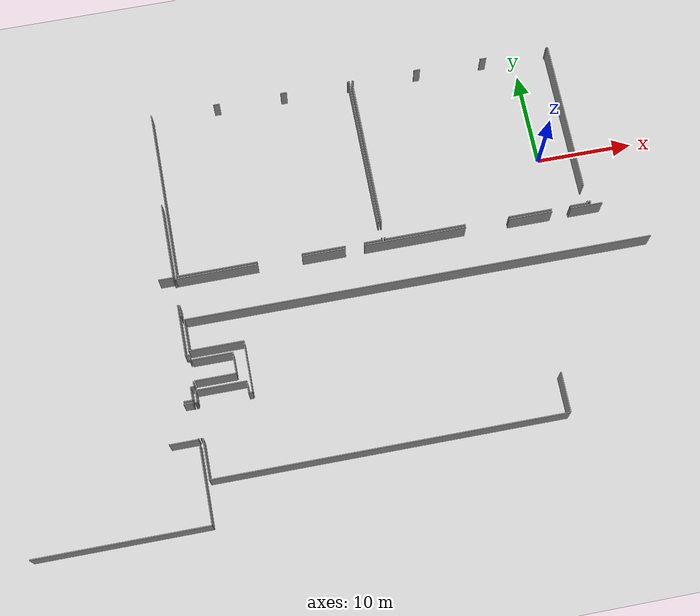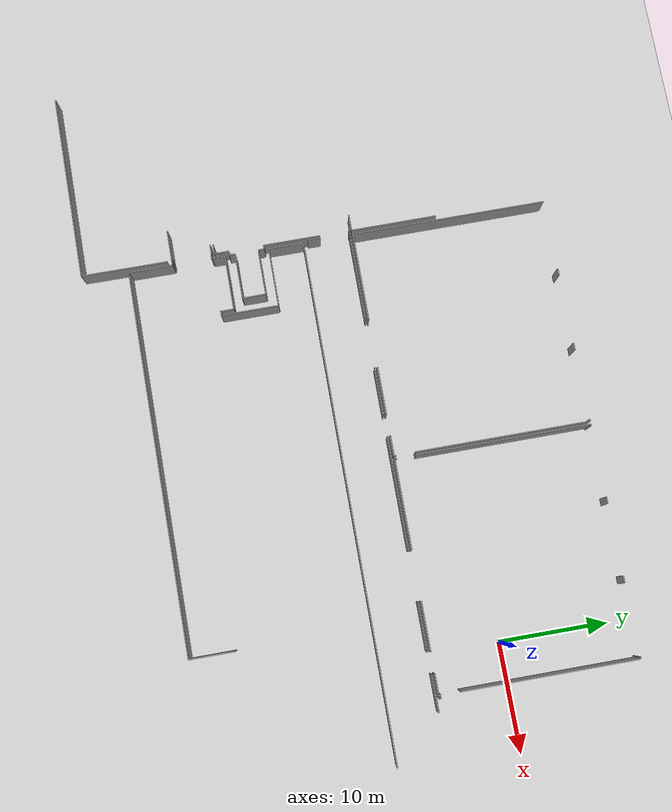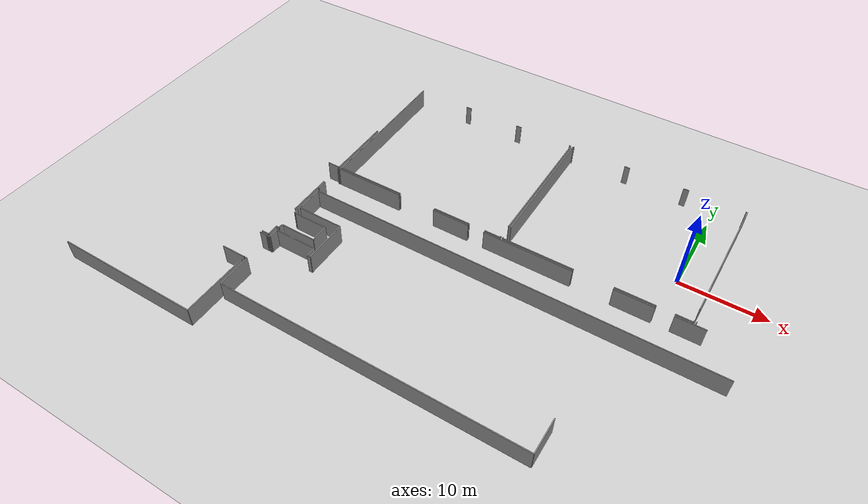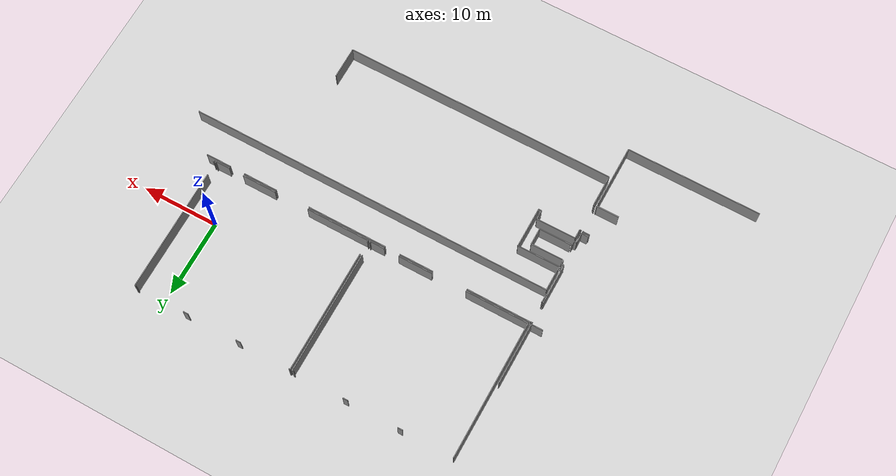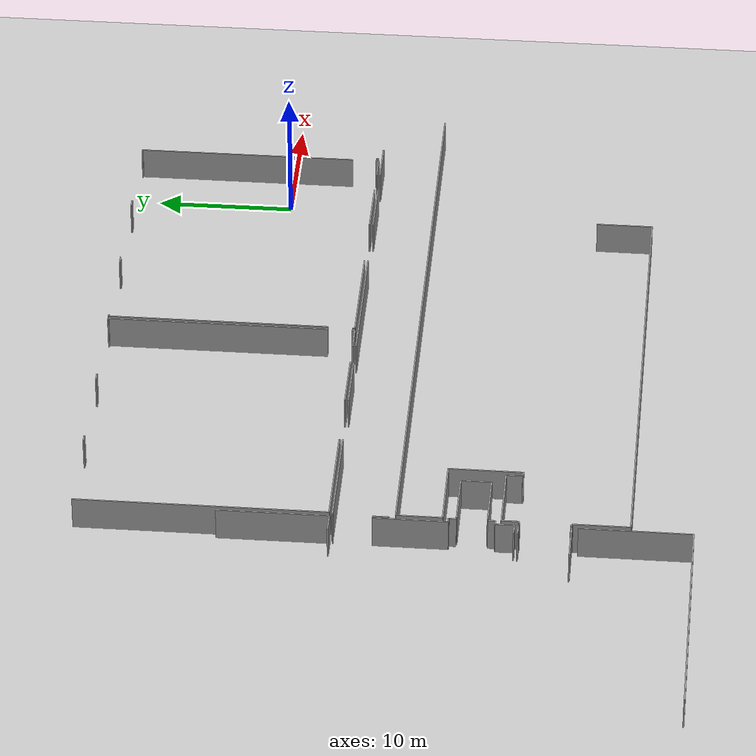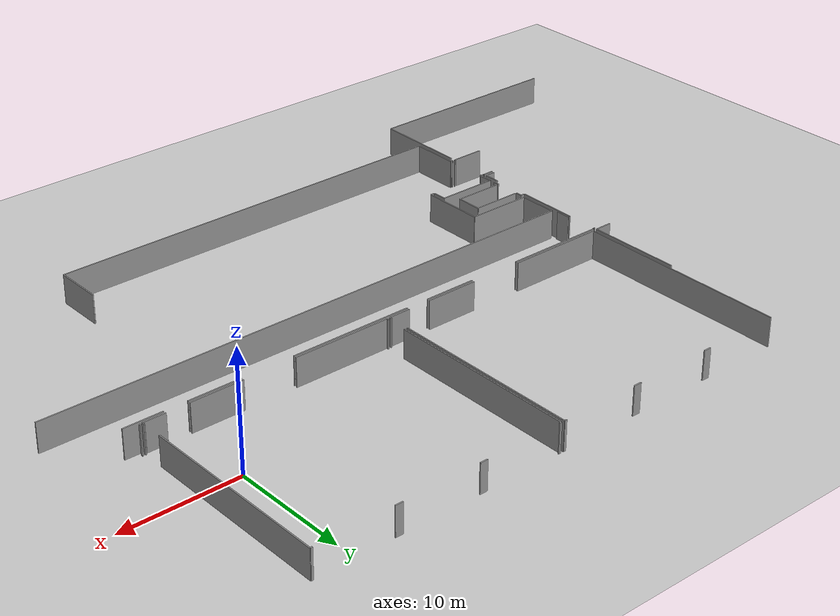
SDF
<sdf version="1.6">
 <world name="default">
  <model name="ground_plane">
   <static>1</static>
   <link name="link">
    <collision name="collision">
     <geometry><plane><normal>0 0 1</normal><size>100 100</size></plane></geometry>
     <surface><friction><ode><mu>100</mu><mu2>50</mu2></ode></friction></surface>
    </collision>
    <visual name="visual">
     <cast_shadows>0</cast_shadows>
     <geometry><plane><normal>0 0 1</normal><size>100 100</size></plane></geometry>
     <material>
      <script><uri>file://media/materials/scripts/gazebo.material</uri><name>Gazebo/Grey</name></script>
     </material>
    </visual>
   </link>
  </model>
  <model name="0510032216_A-40">
   <static>1</static>
   <link name="Wall_12">
    <collision name="Wall_12_Collision">
     <geometry><box><size>1.50265020472 0.1 2.5</size></box></geometry>
     <pose>0.751325102358 0 1.25 0 0 0</pose>
    </collision>
    <visual name="Wall_12_Visual">
     <pose>0.751325102358 0 1.25 0 0 0</pose>
     <geometry><box><size>1.50265020472 0.1 2.5</size></box></geometry>
     <material>
      <script><uri>file://media/materials/scripts/gazebo.material</uri><name>Gazebo/Grey</name></script>
      <ambient>1 1 1 1</ambient>
     </material>
    </visual>
    <pose>29.5272796521 -38.5732313454 0 0 0 3.14159265359</pose>
   </link>
   <link name="Wall_18">
    <collision name="Wall_18_Collision">
     <geometry><box><size>8.03542407399 0.1 2.5</size></box></geometry>
     <pose>4.017712037 0 1.25 0 0 0</pose>
    </collision>
    <visual name="Wall_18_Visual">
     <pose>4.017712037 0 1.25 0 0 0</pose>
     <geometry><box><size>8.03542407399 0.1 2.5</size></box></geometry>
     <material>
      <script><uri>file://media/materials/scripts/gazebo.material</uri><name>Gazebo/Grey</name></script>
      <ambient>1 1 1 1</ambient>
     </material>
    </visual>
    <pose>29.5199162091 -30.5378106453 0 0 0 -1.56987995399</pose>
   </link>
   <link name="Wall_19">
    <collision name="Wall_19_Collision">
     <geometry><box><size>0.901513949281 0.1 2.5</size></box></geometry>
     <pose>0.450756974641 0 1.25 0 0 0</pose>
    </collision>
    <visual name="Wall_19_Visual">
     <pose>0.450756974641 0 1.25 0 0 0</pose>
     <geometry><box><size>0.901513949281 0.1 2.5</size></box></geometry>
     <material>
      <script><uri>file://media/materials/scripts/gazebo.material</uri><name>Gazebo/Grey</name></script>
      <ambient>1 1 1 1</ambient>
     </material>
    </visual>
    <pose>29.5409908909 -51.5537118736 0 0 0 3.14159265359</pose>
   </link>
   <link name="Wall_37">
    <collision name="Wall_37_Collision">
     <geometry><box><size>0.0978830101247 0.1 2.5</size></box></geometry>
     <pose>0.0489415050624 0 1.25 0 0 0</pose>
    </collision>
    <visual name="Wall_37_Visual">
     <pose>0.0489415050624 0 1.25 0 0 0</pose>
     <geometry><box><size>0.0978830101247 0.1 2.5</size></box></geometry>
     <material>
      <script><uri>file://media/materials/scripts/gazebo.material</uri><name>Gazebo/Grey</name></script>
      <ambient>1 1 1 1</ambient>
     </material>
    </visual>
    <pose>29.5315961532 -38.7692512775 0 0 0 -1.57079632679</pose>
   </link>
   <link name="Wall_38">
    <collision name="Wall_38_Collision">
     <geometry><box><size>5.35182657822 0.1 2.5</size></box></geometry>
     <pose>2.67591328911 0 1.25 0 0 0</pose>
    </collision>
    <visual name="Wall_38_Visual">
     <pose>2.67591328911 0 1.25 0 0 0</pose>
     <geometry><box><size>5.35182657822 0.1 2.5</size></box></geometry>
     <material>
      <script><uri>file://media/materials/scripts/gazebo.material</uri><name>Gazebo/Grey</name></script>
      <ambient>1 1 1 1</ambient>
     </material>
    </visual>
    <pose>29.5315961532 -41.5617735741 0 0 0 -1.57079632679</pose>
   </link>
   <link name="Wall_39">
    <collision name="Wall_39_Collision">
     <geometry><box><size>0.358523502714 0.1 2.5</size></box></geometry>
     <pose>0.179261751357 0 1.25 0 0 0</pose>
    </collision>
    <visual name="Wall_39_Visual">
     <pose>0.179261751357 0 1.25 0 0 0</pose>
     <geometry><box><size>0.358523502714 0.1 2.5</size></box></geometry>
     <material>
      <script><uri>file://media/materials/scripts/gazebo.material</uri><name>Gazebo/Grey</name></script>
      <ambient>1 1 1 1</ambient>
     </material>
    </visual>
    <pose>29.5315961532 -46.9136001523 0 0 0 0.0</pose>
   </link>
   <link name="Wall_40">
    <collision name="Wall_40_Collision">
     <geometry><box><size>0.544386961628 0.1 2.5</size></box></geometry>
     <pose>0.272193480814 0 1.25 0 0 0</pose>
    </collision>
    <visual name="Wall_40_Visual">
     <pose>0.272193480814 0 1.25 0 0 0</pose>
     <geometry><box><size>0.544386961628 0.1 2.5</size></box></geometry>
     <material>
      <script><uri>file://media/materials/scripts/gazebo.material</uri><name>Gazebo/Grey</name></script>
      <ambient>1 1 1 1</ambient>
     </material>
    </visual>
    <pose>29.8901196559 -46.9136001523 0 0 0 -1.57079632679</pose>
   </link>
   <link name="Wall_41">
    <collision name="Wall_41_Collision">
     <geometry><box><size>0.542609578824 0.1 2.5</size></box></geometry>
     <pose>0.271304789412 0 1.25 0 0 0</pose>
    </collision>
    <visual name="Wall_41_Visual">
     <pose>0.271304789412 0 1.25 0 0 0</pose>
     <geometry><box><size>0.542609578824 0.1 2.5</size></box></geometry>
     <material>
      <script><uri>file://media/materials/scripts/gazebo.material</uri><name>Gazebo/Grey</name></script>
      <ambient>1 1 1 1</ambient>
     </material>
    </visual>
    <pose>29.8901196559 -49.6671469832 0 0 0 -1.57079632679</pose>
   </link>
   <link name="Wall_42">
    <collision name="Wall_42_Collision">
     <geometry><box><size>0.365759989844 0.1 2.5</size></box></geometry>
     <pose>0.182879994922 0 1.25 0 0 0</pose>
    </collision>
    <visual name="Wall_42_Visual">
     <pose>0.182879994922 0 1.25 0 0 0</pose>
     <geometry><box><size>0.365759989844 0.1 2.5</size></box></geometry>
     <material>
      <script><uri>file://media/materials/scripts/gazebo.material</uri><name>Gazebo/Grey</name></script>
      <ambient>1 1 1 1</ambient>
     </material>
    </visual>
    <pose>29.8901196559 -50.209756562 0 0 0 3.14159265359</pose>
   </link>
   <link name="Wall_43">
    <collision name="Wall_43_Collision">
     <geometry><box><size>1.34405821191 0.1 2.5</size></box></geometry>
     <pose>0.672029105954 0 1.25 0 0 0</pose>
    </collision>
    <visual name="Wall_43_Visual">
     <pose>0.672029105954 0 1.25 0 0 0</pose>
     <geometry><box><size>1.34405821191 0.1 2.5</size></box></geometry>
     <material>
      <script><uri>file://media/materials/scripts/gazebo.material</uri><name>Gazebo/Grey</name></script>
      <ambient>1 1 1 1</ambient>
     </material>
    </visual>
    <pose>29.5243596661 -50.209756562 0 0 0 -1.55842212373</pose>
   </link>
   <link name="Wall_57">
    <collision name="Wall_57_Collision">
     <geometry><box><size>0.0757926809915 0.1 2.5</size></box></geometry>
     <pose>0.0378963404958 0 1.25 0 0 0</pose>
    </collision>
    <visual name="Wall_57_Visual">
     <pose>0.0378963404958 0 1.25 0 0 0</pose>
     <geometry><box><size>0.0757926809915 0.1 2.5</size></box></geometry>
     <material>
      <script><uri>file://media/materials/scripts/gazebo.material</uri><name>Gazebo/Grey</name></script>
      <ambient>1 1 1 1</ambient>
     </material>
    </visual>
    <pose>29.5190275177 -51.8255244866 0 0 0 -1.57079632679</pose>
   </link>
   <link name="Wall_58">
    <collision name="Wall_58_Collision">
     <geometry><box><size>0.100168216587 0.1 2.5</size></box></geometry>
     <pose>0.0500841082934 0 1.25 0 0 0</pose>
    </collision>
    <visual name="Wall_58_Visual">
     <pose>0.0500841082934 0 1.25 0 0 0</pose>
     <geometry><box><size>0.100168216587 0.1 2.5</size></box></geometry>
     <material>
      <script><uri>file://media/materials/scripts/gazebo.material</uri><name>Gazebo/Grey</name></script>
      <ambient>1 1 1 1</ambient>
     </material>
    </visual>
    <pose>29.5190275177 -55.4603992764 0 0 0 -1.57079632679</pose>
   </link>
   <link name="Wall_59">
    <collision name="Wall_59_Collision">
     <geometry><box><size>2.90843304662 0.1 2.5</size></box></geometry>
     <pose>1.45421652331 0 1.25 0 0 0</pose>
    </collision>
    <visual name="Wall_59_Visual">
     <pose>1.45421652331 0 1.25 0 0 0</pose>
     <geometry><box><size>2.90843304662 0.1 2.5</size></box></geometry>
     <material>
      <script><uri>file://media/materials/scripts/gazebo.material</uri><name>Gazebo/Grey</name></script>
      <ambient>1 1 1 1</ambient>
     </material>
    </visual>
    <pose>29.5190275177 -55.5605674929 0 0 0 3.14159265359</pose>
   </link>
   <link name="Wall_64">
    <collision name="Wall_64_Collision">
     <geometry><box><size>0.915862818586 0.1 2.5</size></box></geometry>
     <pose>0.457931409293 0 1.25 0 0 0</pose>
    </collision>
    <visual name="Wall_64_Visual">
     <pose>0.457931409293 0 1.25 0 0 0</pose>
     <geometry><box><size>0.915862818586 0.1 2.5</size></box></geometry>
     <material>
      <script><uri>file://media/materials/scripts/gazebo.material</uri><name>Gazebo/Grey</name></script>
      <ambient>1 1 1 1</ambient>
     </material>
    </visual>
    <pose>28.6031675501 -51.8278096931 0 0 0 0.00249514314466</pose>
   </link>
   <link name="Wall_65">
    <collision name="Wall_65_Collision">
     <geometry><box><size>4.16009140826 0.1 2.5</size></box></geometry>
     <pose>2.08004570413 0 1.25 0 0 0</pose>
    </collision>
    <visual name="Wall_65_Visual">
     <pose>2.08004570413 0 1.25 0 0 0</pose>
     <geometry><box><size>4.16009140826 0.1 2.5</size></box></geometry>
     <material>
      <script><uri>file://media/materials/scripts/gazebo.material</uri><name>Gazebo/Grey</name></script>
      <ambient>1 1 1 1</ambient>
     </material>
    </visual>
    <pose>34.2019233821 -49.6535627004 0 0 0 3.14159265359</pose>
   </link>
   <link name="Wall_66">
    <collision name="Wall_66_Collision">
     <geometry><box><size>4.15272796521 0.1 2.5</size></box></geometry>
     <pose>2.07636398261 0 1.25 0 0 0</pose>
    </collision>
    <visual name="Wall_66_Visual">
     <pose>2.07636398261 0 1.25 0 0 0</pose>
     <geometry><box><size>4.15272796521 0.1 2.5</size></box></geometry>
     <material>
      <script><uri>file://media/materials/scripts/gazebo.material</uri><name>Gazebo/Grey</name></script>
      <ambient>1 1 1 1</ambient>
     </material>
    </visual>
    <pose>30.0418319738 -47.4705557495 0 0 0 0.0</pose>
   </link>
   <link name="Wall_67">
    <collision name="Wall_67_Collision">
     <geometry><box><size>2.18301936952 0.1 2.5</size></box></geometry>
     <pose>1.09150968476 0 1.25 0 0 0</pose>
    </collision>
    <visual name="Wall_67_Visual">
     <pose>1.09150968476 0 1.25 0 0 0</pose>
     <geometry><box><size>2.18301936952 0.1 2.5</size></box></geometry>
     <material>
      <script><uri>file://media/materials/scripts/gazebo.material</uri><name>Gazebo/Grey</name></script>
      <ambient>1 1 1 1</ambient>
     </material>
    </visual>
    <pose>34.1945599391 -47.4705557495 0 0 0 -1.56742326602</pose>
   </link>
   <link name="Wall_75">
    <collision name="Wall_75_Collision">
     <geometry><box><size>17.5922810804 0.1 2.5</size></box></geometry>
     <pose>8.7961405402 0 1.25 0 0 0</pose>
    </collision>
    <visual name="Wall_75_Visual">
     <pose>8.7961405402 0 1.25 0 0 0</pose>
     <geometry><box><size>17.5922810804 0.1 2.5</size></box></geometry>
     <material>
      <script><uri>file://media/materials/scripts/gazebo.material</uri><name>Gazebo/Grey</name></script>
      <ambient>1 1 1 1</ambient>
     </material>
    </visual>
    <pose>29.5135684134 -64.0796902276 0 0 0 3.14159265359</pose>
   </link>
   <link name="Wall_79">
    <collision name="Wall_79_Collision">
     <geometry><box><size>8.07086041613 0.1 2.5</size></box></geometry>
     <pose>4.03543020806 0 1.25 0 0 0</pose>
    </collision>
    <visual name="Wall_79_Visual">
     <pose>4.03543020806 0 1.25 0 0 0</pose>
     <geometry><box><size>8.07086041613 0.1 2.5</size></box></geometry>
     <material>
      <script><uri>file://media/materials/scripts/gazebo.material</uri><name>Gazebo/Grey</name></script>
      <ambient>1 1 1 1</ambient>
     </material>
    </visual>
    <pose>29.5310883296 -56.0088488272 0 0 0 -1.57296709039</pose>
   </link>
   <link name="Wall_80">
    <collision name="Wall_80_Collision">
     <geometry><box><size>4.10067604025 0.1 2.5</size></box></geometry>
     <pose>2.05033802012 0 1.25 0 0 0</pose>
    </collision>
    <visual name="Wall_80_Visual">
     <pose>2.05033802012 0 1.25 0 0 0</pose>
     <geometry><box><size>4.10067604025 0.1 2.5</size></box></geometry>
     <material>
      <script><uri>file://media/materials/scripts/gazebo.material</uri><name>Gazebo/Grey</name></script>
      <ambient>1 1 1 1</ambient>
     </material>
    </visual>
    <pose>29.9489002444 -59.6830799505 0 0 0 1.57079632679</pose>
   </link>
   <link name="Wall_81">
    <collision name="Wall_81_Collision">
     <geometry><box><size>0.16542355667 0.1 2.5</size></box></geometry>
     <pose>0.082711778335 0 1.25 0 0 0</pose>
    </collision>
    <visual name="Wall_81_Visual">
     <pose>0.082711778335 0 1.25 0 0 0</pose>
     <geometry><box><size>0.16542355667 0.1 2.5</size></box></geometry>
     <material>
      <script><uri>file://media/materials/scripts/gazebo.material</uri><name>Gazebo/Grey</name></script>
      <ambient>1 1 1 1</ambient>
     </material>
    </visual>
    <pose>29.9489002444 -55.5824039102 0 0 0 3.14159265359</pose>
   </link>
   <link name="Wall_82">
    <collision name="Wall_82_Collision">
     <geometry><box><size>0.105246453169 0.1 2.5</size></box></geometry>
     <pose>0.0526232265846 0 1.25 0 0 0</pose>
    </collision>
    <visual name="Wall_82_Visual">
     <pose>0.0526232265846 0 1.25 0 0 0</pose>
     <geometry><box><size>0.105246453169 0.1 2.5</size></box></geometry>
     <material>
      <script><uri>file://media/materials/scripts/gazebo.material</uri><name>Gazebo/Grey</name></script>
      <ambient>1 1 1 1</ambient>
     </material>
    </visual>
    <pose>29.7834766877 -55.5824039102 0 0 0 1.57079632679</pose>
   </link>
   <link name="Wall_83">
    <collision name="Wall_83_Collision">
     <geometry><box><size>0.0943282445171 0.1 2.5</size></box></geometry>
     <pose>0.0471641222585 0 1.25 0 0 0</pose>
    </collision>
    <visual name="Wall_83_Visual">
     <pose>0.0471641222585 0 1.25 0 0 0</pose>
     <geometry><box><size>0.0943282445171 0.1 2.5</size></box></geometry>
     <material>
      <script><uri>file://media/materials/scripts/gazebo.material</uri><name>Gazebo/Grey</name></script>
      <ambient>1 1 1 1</ambient>
     </material>
    </visual>
    <pose>29.7834766877 -51.9293744247 0 0 0 1.57079632679</pose>
   </link>
   <link name="Wall_84">
    <collision name="Wall_84_Collision">
     <geometry><box><size>0.172025264227 0.1 2.5</size></box></geometry>
     <pose>0.0860126321135 0 1.25 0 0 0</pose>
    </collision>
    <visual name="Wall_84_Visual">
     <pose>0.0860126321135 0 1.25 0 0 0</pose>
     <geometry><box><size>0.172025264227 0.1 2.5</size></box></geometry>
     <material>
      <script><uri>file://media/materials/scripts/gazebo.material</uri><name>Gazebo/Grey</name></script>
      <ambient>1 1 1 1</ambient>
     </material>
    </visual>
    <pose>29.7834766877 -51.8350461802 0 0 0 0.0</pose>
   </link>
   <link name="Wall_85">
    <collision name="Wall_85_Collision">
     <geometry><box><size>0.403211984638 0.1 2.5</size></box></geometry>
     <pose>0.201605992319 0 1.25 0 0 0</pose>
    </collision>
    <visual name="Wall_85_Visual">
     <pose>0.201605992319 0 1.25 0 0 0</pose>
     <geometry><box><size>0.403211984638 0.1 2.5</size></box></geometry>
     <material>
      <script><uri>file://media/materials/scripts/gazebo.material</uri><name>Gazebo/Grey</name></script>
      <ambient>1 1 1 1</ambient>
     </material>
    </visual>
    <pose>35.0729679119 -51.8350461802 0 0 0 0.0</pose>
   </link>
   <link name="Wall_86">
    <collision name="Wall_86_Collision">
     <geometry><box><size>5.33989272225 0.1 2.5</size></box></geometry>
     <pose>2.66994636113 0 1.25 0 0 0</pose>
    </collision>
    <visual name="Wall_86_Visual">
     <pose>2.66994636113 0 1.25 0 0 0</pose>
     <geometry><box><size>5.33989272225 0.1 2.5</size></box></geometry>
     <material>
      <script><uri>file://media/materials/scripts/gazebo.material</uri><name>Gazebo/Grey</name></script>
      <ambient>1 1 1 1</ambient>
     </material>
    </visual>
    <pose>35.4761798965 -51.8350461802 0 0 0 1.57079632679</pose>
   </link>
   <link name="Wall_87">
    <collision name="Wall_87_Collision">
     <geometry><box><size>5.52359793062 0.1 2.5</size></box></geometry>
     <pose>2.76179896531 0 1.25 0 0 0</pose>
    </collision>
    <visual name="Wall_87_Visual">
     <pose>2.76179896531 0 1.25 0 0 0</pose>
     <geometry><box><size>5.52359793062 0.1 2.5</size></box></geometry>
     <material>
      <script><uri>file://media/materials/scripts/gazebo.material</uri><name>Gazebo/Grey</name></script>
      <ambient>1 1 1 1</ambient>
     </material>
    </visual>
    <pose>35.4761798965 -46.495153458 0 0 0 3.14159265359</pose>
   </link>
   <link name="Wall_88">
    <collision name="Wall_88_Collision">
     <geometry><box><size>3.29602945377 0.1 2.5</size></box></geometry>
     <pose>1.64801472689 0 1.25 0 0 0</pose>
    </collision>
    <visual name="Wall_88_Visual">
     <pose>1.64801472689 0 1.25 0 0 0</pose>
     <geometry><box><size>3.29602945377 0.1 2.5</size></box></geometry>
     <material>
      <script><uri>file://media/materials/scripts/gazebo.material</uri><name>Gazebo/Grey</name></script>
      <ambient>1 1 1 1</ambient>
     </material>
    </visual>
    <pose>29.9525819659 -46.495153458 0 0 0 1.57079632679</pose>
   </link>
   <link name="Wall_89">
    <collision name="Wall_89_Collision">
     <geometry><box><size>48.2037642429 0.1 2.5</size></box></geometry>
     <pose>24.1018821214 0 1.25 0 0 0</pose>
    </collision>
    <visual name="Wall_89_Visual">
     <pose>24.1018821214 0 1.25 0 0 0</pose>
     <geometry><box><size>48.2037642429 0.1 2.5</size></box></geometry>
     <material>
      <script><uri>file://media/materials/scripts/gazebo.material</uri><name>Gazebo/Grey</name></script>
      <ambient>1 1 1 1</ambient>
     </material>
    </visual>
    <pose>29.9525819659 -43.1991240042 0 0 0 0.0</pose>
   </link>
   <link name="Wall_92">
    <collision name="Wall_92_Collision">
     <geometry><box><size>4.13101850382 0.1 2.5</size></box></geometry>
     <pose>2.06550925191 0 1.25 0 0 0</pose>
    </collision>
    <visual name="Wall_92_Visual">
     <pose>2.06550925191 0 1.25 0 0 0</pose>
     <geometry><box><size>4.13101850382 0.1 2.5</size></box></geometry>
     <material>
      <script><uri>file://media/materials/scripts/gazebo.material</uri><name>Gazebo/Grey</name></script>
      <ambient>1 1 1 1</ambient>
     </material>
    </visual>
    <pose>65.8183895642 -55.5603135811 0 0 0 -1.57079632679</pose>
   </link>
   <link name="Wall_93">
    <collision name="Wall_93_Collision">
     <geometry><box><size>35.8694902691 0.1 2.5</size></box></geometry>
     <pose>17.9347451345 0 1.25 0 0 0</pose>
    </collision>
    <visual name="Wall_93_Visual">
     <pose>17.9347451345 0 1.25 0 0 0</pose>
     <geometry><box><size>35.8694902691 0.1 2.5</size></box></geometry>
     <material>
      <script><uri>file://media/materials/scripts/gazebo.material</uri><name>Gazebo/Grey</name></script>
      <ambient>1 1 1 1</ambient>
     </material>
    </visual>
    <pose>65.8183895642 -59.6913320849 0 0 0 3.1413625936</pose>
   </link>
   <link name="Wall_94">
    <collision name="Wall_94_Collision">
     <geometry><box><size>1.15402926334 0.1 2.5</size></box></geometry>
     <pose>0.577014631669 0 1.25 0 0 0</pose>
    </collision>
    <visual name="Wall_94_Visual">
     <pose>0.577014631669 0 1.25 0 0 0</pose>
     <geometry><box><size>1.15402926334 0.1 2.5</size></box></geometry>
     <material>
      <script><uri>file://media/materials/scripts/gazebo.material</uri><name>Gazebo/Grey</name></script>
      <ambient>1 1 1 1</ambient>
     </material>
    </visual>
    <pose>29.9505506713 -51.7769003713 0 0 0 1.57079632679</pose>
   </link>
   <link name="Wall_95">
    <collision name="Wall_95_Collision">
     <geometry><box><size>5.12965372774 0.1 2.5</size></box></geometry>
     <pose>2.56482686387 0 1.25 0 0 0</pose>
    </collision>
    <visual name="Wall_95_Visual">
     <pose>2.56482686387 0 1.25 0 0 0</pose>
     <geometry><box><size>5.12965372774 0.1 2.5</size></box></geometry>
     <material>
      <script><uri>file://media/materials/scripts/gazebo.material</uri><name>Gazebo/Grey</name></script>
      <ambient>1 1 1 1</ambient>
     </material>
    </visual>
    <pose>29.9505506713 -50.622871108 0 0 0 0.0</pose>
   </link>
   <link name="Wall_96">
    <collision name="Wall_96_Collision">
     <geometry><box><size>1.15412001439 0.1 2.5</size></box></geometry>
     <pose>0.577060007197 0 1.25 0 0 0</pose>
    </collision>
    <visual name="Wall_96_Visual">
     <pose>0.577060007197 0 1.25 0 0 0</pose>
     <geometry><box><size>1.15412001439 0.1 2.5</size></box></geometry>
     <material>
      <script><uri>file://media/materials/scripts/gazebo.material</uri><name>Gazebo/Grey</name></script>
      <ambient>1 1 1 1</ambient>
     </material>
    </visual>
    <pose>35.080204399 -50.622871108 0 0 0 -1.55825573012</pose>
   </link>
   <link name="Wall_97">
    <collision name="Wall_97_Collision">
     <geometry><box><size>1.20328815819 0.1 2.5</size></box></geometry>
     <pose>0.601644079094 0 1.25 0 0 0</pose>
    </collision>
    <visual name="Wall_97_Visual">
     <pose>0.601644079094 0 1.25 0 0 0</pose>
     <geometry><box><size>1.20328815819 0.1 2.5</size></box></geometry>
     <material>
      <script><uri>file://media/materials/scripts/gazebo.material</uri><name>Gazebo/Grey</name></script>
      <ambient>1 1 1 1</ambient>
     </material>
    </visual>
    <pose>29.7076840067 -42.7786460152 0 0 0 1.57079632679</pose>
   </link>
   <link name="Wall_98">
    <collision name="Wall_98_Collision">
     <geometry><box><size>0.0882343606183 0.1 2.5</size></box></geometry>
     <pose>0.0441171803091 0 1.25 0 0 0</pose>
    </collision>
    <visual name="Wall_98_Visual">
     <pose>0.0441171803091 0 1.25 0 0 0</pose>
     <geometry><box><size>0.0882343606183 0.1 2.5</size></box></geometry>
     <material>
      <script><uri>file://media/materials/scripts/gazebo.material</uri><name>Gazebo/Grey</name></script>
      <ambient>1 1 1 1</ambient>
     </material>
    </visual>
    <pose>29.7076840067 -38.8484717682 0 0 0 1.57079632679</pose>
   </link>
   <link name="Wall_99">
    <collision name="Wall_99_Collision">
     <geometry><box><size>8.47849684197 0.1 2.5</size></box></geometry>
     <pose>4.23924842099 0 1.25 0 0 0</pose>
    </collision>
    <visual name="Wall_99_Visual">
     <pose>4.23924842099 0 1.25 0 0 0</pose>
     <geometry><box><size>8.47849684197 0.1 2.5</size></box></geometry>
     <material>
      <script><uri>file://media/materials/scripts/gazebo.material</uri><name>Gazebo/Grey</name></script>
      <ambient>1 1 1 1</ambient>
     </material>
    </visual>
    <pose>29.7076840067 -38.7602374076 0 0 0 0.0</pose>
   </link>
   <link name="Wall_100">
    <collision name="Wall_100_Collision">
     <geometry><box><size>4.49411241946 0.1 2.5</size></box></geometry>
     <pose>2.24705620973 0 1.25 0 0 0</pose>
    </collision>
    <visual name="Wall_100_Visual">
     <pose>2.24705620973 0 1.25 0 0 0</pose>
     <geometry><box><size>4.49411241946 0.1 2.5</size></box></geometry>
     <material>
      <script><uri>file://media/materials/scripts/gazebo.material</uri><name>Gazebo/Grey</name></script>
      <ambient>1 1 1 1</ambient>
     </material>
    </visual>
    <pose>42.7677658933 -38.7602374076 0 0 0 0.0</pose>
   </link>
   <link name="Wall_101">
    <collision name="Wall_101_Collision">
     <geometry><box><size>10.5717459612 0.1 2.5</size></box></geometry>
     <pose>5.28587298061 0 1.25 0 0 0</pose>
    </collision>
    <visual name="Wall_101_Visual">
     <pose>5.28587298061 0 1.25 0 0 0</pose>
     <geometry><box><size>10.5717459612 0.1 2.5</size></box></geometry>
     <material>
      <script><uri>file://media/materials/scripts/gazebo.material</uri><name>Gazebo/Grey</name></script>
      <ambient>1 1 1 1</ambient>
     </material>
    </visual>
    <pose>49.2257593551 -38.7602374076 0 0 0 0.0</pose>
   </link>
   <link name="Wall_102">
    <collision name="Wall_102_Collision">
     <geometry><box><size>4.51937664646 0.1 2.5</size></box></geometry>
     <pose>2.25968832323 0 1.25 0 0 0</pose>
    </collision>
    <visual name="Wall_102_Visual">
     <pose>2.25968832323 0 1.25 0 0 0</pose>
     <geometry><box><size>4.51937664646 0.1 2.5</size></box></geometry>
     <material>
      <script><uri>file://media/materials/scripts/gazebo.material</uri><name>Gazebo/Grey</name></script>
      <ambient>1 1 1 1</ambient>
     </material>
    </visual>
    <pose>64.3547148253 -38.7602374076 0 0 0 0.0</pose>
   </link>
   <link name="Wall_103">
    <collision name="Wall_103_Collision">
     <geometry><box><size>3.33056146253 0.1 2.5</size></box></geometry>
     <pose>1.66528073127 0 1.25 0 0 0</pose>
    </collision>
    <visual name="Wall_103_Visual">
     <pose>1.66528073127 0 1.25 0 0 0</pose>
     <geometry><box><size>3.33056146253 0.1 2.5</size></box></geometry>
     <material>
      <script><uri>file://media/materials/scripts/gazebo.material</uri><name>Gazebo/Grey</name></script>
      <ambient>1 1 1 1</ambient>
     </material>
    </visual>
    <pose>70.8524454883 -38.7602374076 0 0 0 0.0</pose>
   </link>
   <link name="Wall_121">
    <collision name="Wall_121_Collision">
     <geometry><box><size>1.89215095058 0.1 2.5</size></box></geometry>
     <pose>0.946075475291 0 1.25 0 0 0</pose>
    </collision>
    <visual name="Wall_121_Visual">
     <pose>0.946075475291 0 1.25 0 0 0</pose>
     <geometry><box><size>1.89215095058 0.1 2.5</size></box></geometry>
     <material>
      <script><uri>file://media/materials/scripts/gazebo.material</uri><name>Gazebo/Grey</name></script>
      <ambient>1 1 1 1</ambient>
     </material>
    </visual>
    <pose>51.1246389691 -38.517370743 0 0 0 3.14159265359</pose>
   </link>
   <link name="Wall_122">
    <collision name="Wall_122_Collision">
     <geometry><box><size>4.50922017329 0.1 2.5</size></box></geometry>
     <pose>2.25461008665 0 1.25 0 0 0</pose>
    </collision>
    <visual name="Wall_122_Visual">
     <pose>2.25461008665 0 1.25 0 0 0</pose>
     <geometry><box><size>4.50922017329 0.1 2.5</size></box></geometry>
     <material>
      <script><uri>file://media/materials/scripts/gazebo.material</uri><name>Gazebo/Grey</name></script>
      <ambient>1 1 1 1</ambient>
     </material>
    </visual>
    <pose>47.2837147301 -38.517370743 0 0 0 3.14159265359</pose>
   </link>
   <link name="Wall_123">
    <collision name="Wall_123_Collision">
     <geometry><box><size>8.28222299806 0.1 2.5</size></box></geometry>
     <pose>4.14111149903 0 1.25 0 0 0</pose>
    </collision>
    <visual name="Wall_123_Visual">
     <pose>4.14111149903 0 1.25 0 0 0</pose>
     <geometry><box><size>8.28222299806 0.1 2.5</size></box></geometry>
     <material>
      <script><uri>file://media/materials/scripts/gazebo.material</uri><name>Gazebo/Grey</name></script>
      <ambient>1 1 1 1</ambient>
     </material>
    </visual>
    <pose>38.1941790713 -38.517370743 0 0 0 3.14159265359</pose>
   </link>
   <link name="Wall_124">
    <collision name="Wall_124_Collision">
     <geometry><box><size>18.1835147745 0.1 2.5</size></box></geometry>
     <pose>9.09175738725 0 1.25 0 0 0</pose>
    </collision>
    <visual name="Wall_124_Visual">
     <pose>9.09175738725 0 1.25 0 0 0</pose>
     <geometry><box><size>18.1835147745 0.1 2.5</size></box></geometry>
     <material>
      <script><uri>file://media/materials/scripts/gazebo.material</uri><name>Gazebo/Grey</name></script>
      <ambient>1 1 1 1</ambient>
     </material>
    </visual>
    <pose>29.9119560733 -38.517370743 0 0 0 1.57079632679</pose>
   </link>
   <link name="Wall_125">
    <collision name="Wall_125_Collision">
     <geometry><box><size>0.642777795411 0.1 2.5</size></box></geometry>
     <pose>0.321388897705 0 1.25 0 0 0</pose>
    </collision>
    <visual name="Wall_125_Visual">
     <pose>0.321388897705 0 1.25 0 0 0</pose>
     <geometry><box><size>0.642777795411 0.1 2.5</size></box></geometry>
     <material>
      <script><uri>file://media/materials/scripts/gazebo.material</uri><name>Gazebo/Grey</name></script>
      <ambient>1 1 1 1</ambient>
     </material>
    </visual>
    <pose>36.5278826927 -20.3338559685 0 0 0 0.0</pose>
   </link>
   <link name="Wall_126">
    <collision name="Wall_126_Collision">
     <geometry><box><size>0.667788110579 0.1 2.5</size></box></geometry>
     <pose>0.333894055289 0 1.25 0 0 0</pose>
    </collision>
    <visual name="Wall_126_Visual">
     <pose>0.333894055289 0 1.25 0 0 0</pose>
     <geometry><box><size>0.667788110579 0.1 2.5</size></box></geometry>
     <material>
      <script><uri>file://media/materials/scripts/gazebo.material</uri><name>Gazebo/Grey</name></script>
      <ambient>1 1 1 1</ambient>
     </material>
    </visual>
    <pose>43.7068587933 -20.3338559685 0 0 0 0.0</pose>
   </link>
   <link name="Wall_127">
    <collision name="Wall_127_Collision">
     <geometry><box><size>0.200336433174 0.1 2.5</size></box></geometry>
     <pose>0.100168216587 0 1.25 0 0 0</pose>
    </collision>
    <visual name="Wall_127_Visual">
     <pose>0.100168216587 0 1.25 0 0 0</pose>
     <geometry><box><size>0.200336433174 0.1 2.5</size></box></geometry>
     <material>
      <script><uri>file://media/materials/scripts/gazebo.material</uri><name>Gazebo/Grey</name></script>
      <ambient>1 1 1 1</ambient>
     </material>
    </visual>
    <pose>50.9190973434 -20.3338559685 0 0 0 0.0</pose>
   </link>
   <link name="Wall_128">
    <collision name="Wall_128_Collision">
     <geometry><box><size>16.1962738439 0.1 2.5</size></box></geometry>
     <pose>8.09813692195 0 1.25 0 0 0</pose>
    </collision>
    <visual name="Wall_128_Visual">
     <pose>8.09813692195 0 1.25 0 0 0</pose>
     <geometry><box><size>16.1962738439 0.1 2.5</size></box></geometry>
     <material>
      <script><uri>file://media/materials/scripts/gazebo.material</uri><name>Gazebo/Grey</name></script>
      <ambient>1 1 1 1</ambient>
     </material>
    </visual>
    <pose>51.1194337766 -20.3338559685 0 0 0 -1.57079632679</pose>
   </link>
   <link name="Wall_129">
    <collision name="Wall_129_Collision">
     <geometry><box><size>0.214999382134 0.1 2.5</size></box></geometry>
     <pose>0.107499691067 0 1.25 0 0 0</pose>
    </collision>
    <visual name="Wall_129_Visual">
     <pose>0.107499691067 0 1.25 0 0 0</pose>
     <geometry><box><size>0.214999382134 0.1 2.5</size></box></geometry>
     <material>
      <script><uri>file://media/materials/scripts/gazebo.material</uri><name>Gazebo/Grey</name></script>
      <ambient>1 1 1 1</ambient>
     </material>
    </visual>
    <pose>51.1194337766 -38.3024343797 0 0 0 -1.54658369385</pose>
   </link>
   <link name="Wall_130">
    <collision name="Wall_130_Collision">
     <geometry><box><size>1.90294220332 0.1 2.5</size></box></geometry>
     <pose>0.95147110166 0 1.25 0 0 0</pose>
    </collision>
    <visual name="Wall_130_Visual">
     <pose>0.95147110166 0 1.25 0 0 0</pose>
     <geometry><box><size>1.90294220332 0.1 2.5</size></box></geometry>
     <material>
      <script><uri>file://media/materials/scripts/gazebo.material</uri><name>Gazebo/Grey</name></script>
      <ambient>1 1 1 1</ambient>
     </material>
    </visual>
    <pose>72.7332973625 -38.5017551655 0 0 0 3.14159265359</pose>
   </link>
   <link name="Wall_131">
    <collision name="Wall_131_Collision">
     <geometry><box><size>4.52699400133 0.1 2.5</size></box></geometry>
     <pose>2.26349700067 0 1.25 0 0 0</pose>
    </collision>
    <visual name="Wall_131_Visual">
     <pose>2.26349700067 0 1.25 0 0 0</pose>
     <geometry><box><size>4.52699400133 0.1 2.5</size></box></geometry>
     <material>
      <script><uri>file://media/materials/scripts/gazebo.material</uri><name>Gazebo/Grey</name></script>
      <ambient>1 1 1 1</ambient>
     </material>
    </visual>
    <pose>68.8831053417 -38.5017551655 0 0 0 3.14159265359</pose>
   </link>
   <link name="Wall_132">
    <collision name="Wall_132_Collision">
     <geometry><box><size>8.40308502872 0.1 2.5</size></box></geometry>
     <pose>4.20154251436 0 1.25 0 0 0</pose>
    </collision>
    <visual name="Wall_132_Visual">
     <pose>4.20154251436 0 1.25 0 0 0</pose>
     <geometry><box><size>8.40308502872 0.1 2.5</size></box></geometry>
     <material>
      <script><uri>file://media/materials/scripts/gazebo.material</uri><name>Gazebo/Grey</name></script>
      <ambient>1 1 1 1</ambient>
     </material>
    </visual>
    <pose>59.8114704669 -38.5017551655 0 0 0 3.14159265359</pose>
   </link>
   <link name="Wall_133">
    <collision name="Wall_133_Collision">
     <geometry><box><size>0.20274859555 0.1 2.5</size></box></geometry>
     <pose>0.101374297775 0 1.25 0 0 0</pose>
    </collision>
    <visual name="Wall_133_Visual">
     <pose>0.101374297775 0 1.25 0 0 0</pose>
     <geometry><box><size>0.20274859555 0.1 2.5</size></box></geometry>
     <material>
      <script><uri>file://media/materials/scripts/gazebo.material</uri><name>Gazebo/Grey</name></script>
      <ambient>1 1 1 1</ambient>
     </material>
    </visual>
    <pose>51.4083854382 -38.5017551655 0 0 0 1.57079632679</pose>
   </link>
   <link name="Wall_134">
    <collision name="Wall_134_Collision">
     <geometry><box><size>16.21100073 0.1 2.5</size></box></geometry>
     <pose>8.105500365 0 1.25 0 0 0</pose>
    </collision>
    <visual name="Wall_134_Visual">
     <pose>8.105500365 0 1.25 0 0 0</pose>
     <geometry><box><size>16.21100073 0.1 2.5</size></box></geometry>
     <material>
      <script><uri>file://media/materials/scripts/gazebo.material</uri><name>Gazebo/Grey</name></script>
      <ambient>1 1 1 1</ambient>
     </material>
    </visual>
    <pose>51.4083854382 -36.5364776082 0 0 0 1.57079632679</pose>
   </link>
   <link name="Wall_135">
    <collision name="Wall_135_Collision">
     <geometry><box><size>0.170247881423 0.1 2.5</size></box></geometry>
     <pose>0.0851239407116 0 1.25 0 0 0</pose>
    </collision>
    <visual name="Wall_135_Visual">
     <pose>0.0851239407116 0 1.25 0 0 0</pose>
     <geometry><box><size>0.170247881423 0.1 2.5</size></box></geometry>
     <material>
      <script><uri>file://media/materials/scripts/gazebo.material</uri><name>Gazebo/Grey</name></script>
      <ambient>1 1 1 1</ambient>
     </material>
    </visual>
    <pose>51.4083854382 -20.3254768782 0 0 0 0.0</pose>
   </link>
   <link name="Wall_136">
    <collision name="Wall_136_Collision">
     <geometry><box><size>0.653188180404 0.1 2.5</size></box></geometry>
     <pose>0.326594090202 0 1.25 0 0 0</pose>
    </collision>
    <visual name="Wall_136_Visual">
     <pose>0.326594090202 0 1.25 0 0 0</pose>
     <geometry><box><size>0.653188180404 0.1 2.5</size></box></geometry>
     <material>
      <script><uri>file://media/materials/scripts/gazebo.material</uri><name>Gazebo/Grey</name></script>
      <ambient>1 1 1 1</ambient>
     </material>
    </visual>
    <pose>58.1154664043 -20.3254768782 0 0 0 0.0</pose>
   </link>
   <link name="Wall_137">
    <collision name="Wall_137_Collision">
     <geometry><box><size>0.668168978322 0.1 2.5</size></box></geometry>
     <pose>0.334084489161 0 1.25 0 0 0</pose>
    </collision>
    <visual name="Wall_137_Visual">
     <pose>0.334084489161 0 1.25 0 0 0</pose>
     <geometry><box><size>0.668168978322 0.1 2.5</size></box></geometry>
     <material>
      <script><uri>file://media/materials/scripts/gazebo.material</uri><name>Gazebo/Grey</name></script>
      <ambient>1 1 1 1</ambient>
     </material>
    </visual>
    <pose>65.3185641286 -20.3254768782 0 0 0 0.0</pose>
   </link>
   <link name="Wall_138">
    <collision name="Wall_138_Collision">
     <geometry><box><size>0.178500015869 0.1 2.5</size></box></geometry>
     <pose>0.0892500079347 0 1.25 0 0 0</pose>
    </collision>
    <visual name="Wall_138_Visual">
     <pose>0.0892500079347 0 1.25 0 0 0</pose>
     <geometry><box><size>0.178500015869 0.1 2.5</size></box></geometry>
     <material>
      <script><uri>file://media/materials/scripts/gazebo.material</uri><name>Gazebo/Grey</name></script>
      <ambient>1 1 1 1</ambient>
     </material>
    </visual>
    <pose>72.5315644143 -20.3254768782 0 0 0 0.0</pose>
   </link>
   <link name="Wall_139">
    <collision name="Wall_139_Collision">
     <geometry><box><size>16.2008442568 0.1 2.5</size></box></geometry>
     <pose>8.10042212842 0 1.25 0 0 0</pose>
    </collision>
    <visual name="Wall_139_Visual">
     <pose>8.10042212842 0 1.25 0 0 0</pose>
     <geometry><box><size>16.2008442568 0.1 2.5</size></box></geometry>
     <material>
      <script><uri>file://media/materials/scripts/gazebo.material</uri><name>Gazebo/Grey</name></script>
      <ambient>1 1 1 1</ambient>
     </material>
    </visual>
    <pose>72.7100644301 -20.3254768782 0 0 0 -1.57079632679</pose>
   </link>
   <link name="Wall_140">
    <collision name="Wall_140_Collision">
     <geometry><box><size>0.213537923561 0.1 2.5</size></box></geometry>
     <pose>0.10676896178 0 1.25 0 0 0</pose>
    </collision>
    <visual name="Wall_140_Visual">
     <pose>0.10676896178 0 1.25 0 0 0</pose>
     <geometry><box><size>0.213537923561 0.1 2.5</size></box></geometry>
     <material>
      <script><uri>file://media/materials/scripts/gazebo.material</uri><name>Gazebo/Grey</name></script>
      <ambient>1 1 1 1</ambient>
     </material>
    </visual>
    <pose>72.7100644301 -38.2894848764 0 0 0 -1.46178049342</pose>
   </link>
   <link name="Wall_144">
    <collision name="Wall_144_Collision">
     <geometry><box><size>0.207445964389 0.1 2.5</size></box></geometry>
     <pose>0.103722982194 0 1.25 0 0 0</pose>
    </collision>
    <visual name="Wall_144_Visual">
     <pose>0.103722982194 0 1.25 0 0 0</pose>
     <geometry><box><size>0.207445964389 0.1 2.5</size></box></geometry>
     <material>
      <script><uri>file://media/materials/scripts/gazebo.material</uri><name>Gazebo/Grey</name></script>
      <ambient>1 1 1 1</ambient>
     </material>
    </visual>
    <pose>72.9831466023 -38.5064525344 0 0 0 1.57079632679</pose>
   </link>
   <pose>-69.25 32.0461944965 0 0 0 0</pose>
  </model>
 </world>
</sdf>
